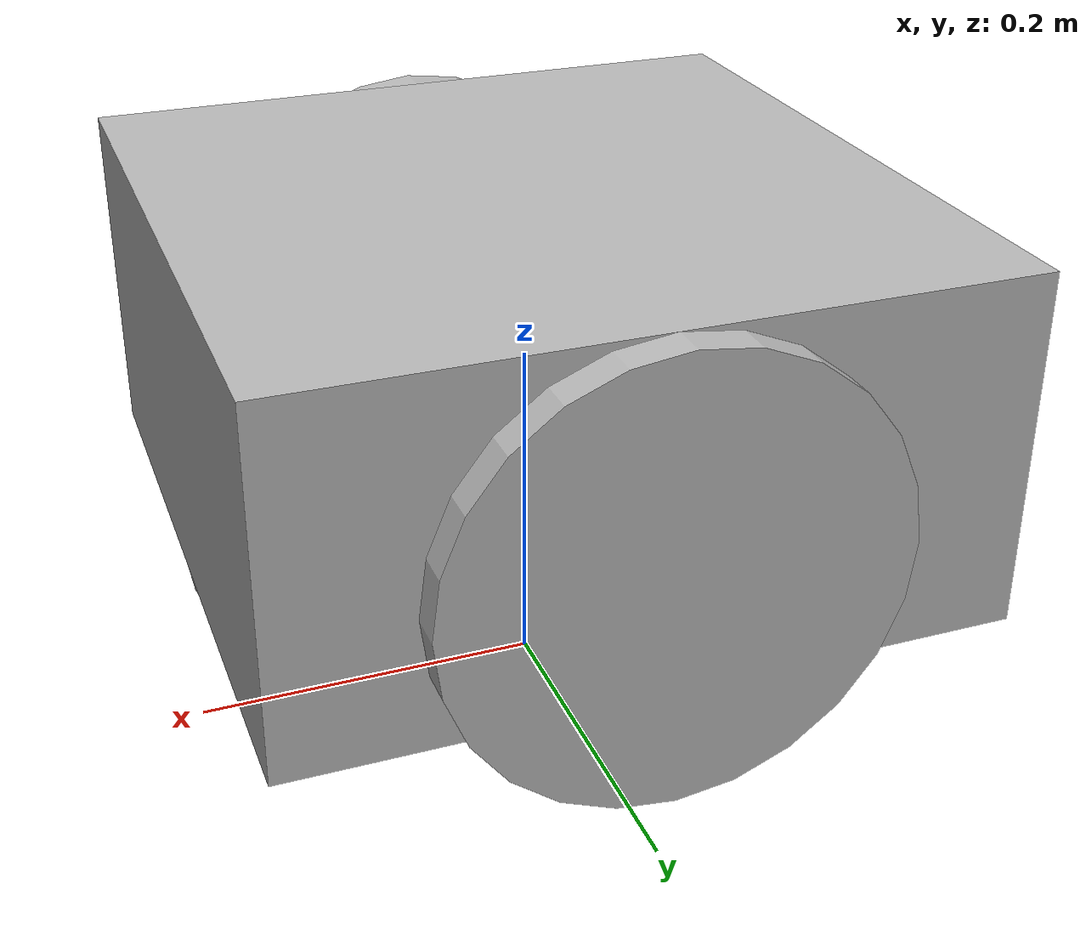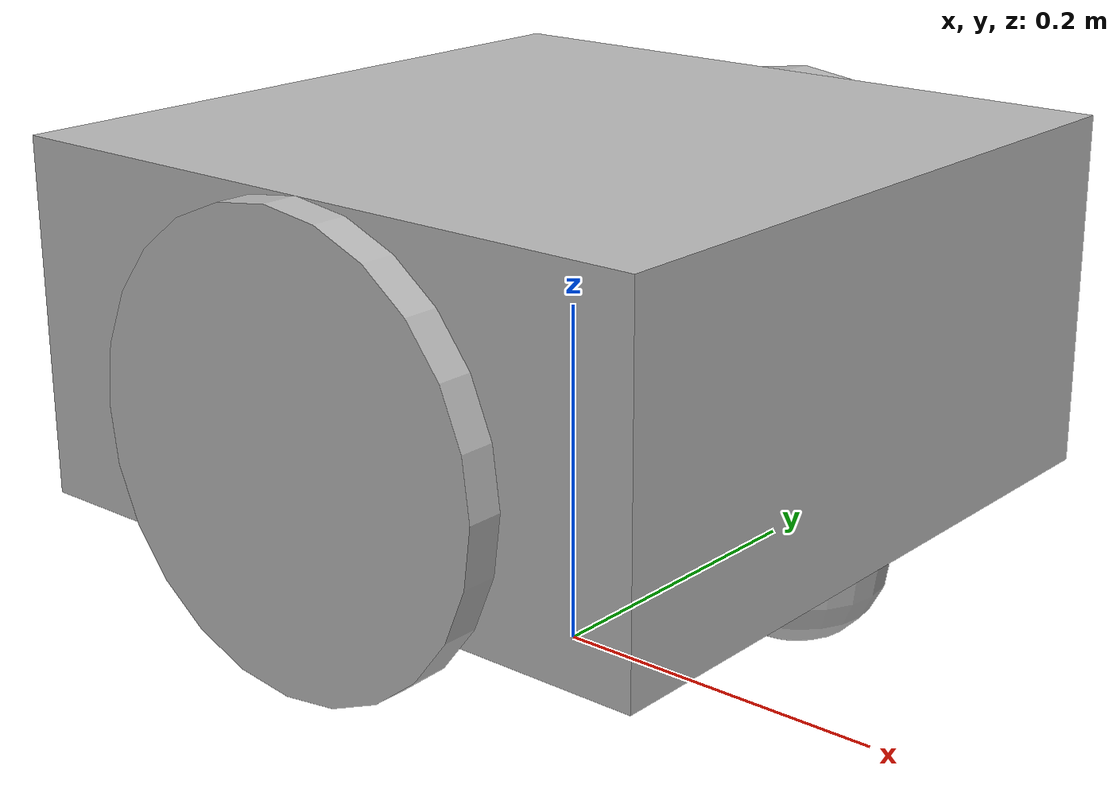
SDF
<?xml version='1.0'?>
<sdf version='1.4'>
  <!-- 車輪型ロボット1 -->
  <model name="wheel_robot1">
    <static>false</static> <!-- trueにすると静的モデル -->
    <link name='chassis'>　<!-- リンク：車体　-->
      <pose>0 0 0.2 0 0 0</pose> <!-- 位置(x,y,z)と姿勢(roll,pitch,yaw) -->
      <collision name='collision'> <!-- 衝突検出用 -->
        <geometry> <!-- 形状情報 -->
          <box> <!-- 直方体　-->
            <size>0.4 0.4 0.2</size> <!-- サイズx,y,z軸方向 -->
          </box>
        </geometry>
      </collision>

      <visual name='visual'> <!-- 表示用 -->
	<geometry>
          <box>
            <size>0.4 0.4 0.2</size>
          </box>
        </geometry>
      </visual>

      <collision name='caster1_collision'> <!-- キャスター -->
        <pose>0.15 0 -0.1 0 0 0</pose>
	<geometry>
          <sphere>　
            <radius>.05</radius> <!-- 半径 -->
          </sphere>
        </geometry>

        <surface> <!-- 表面情報 -->
        <friction> <!-- 摩擦 -->
            <ode> <!-- ODE用のパラメータ -->
              <mu>0</mu> <!-- 摩擦係数 -->
              <mu2>0</mu2>
              <slip1>1.0</slip1>
              <slip2>1.0</slip2>
            </ode>
          </friction>
        </surface>
      </collision>

      <visual name='caster1_visual'>
	<pose>0.15 0 -0.1 0 0 0</pose>
        <geometry>
	  <sphere>
            <radius>.05</radius>
          </sphere>
        </geometry>
      </visual>

      <collision name='caster2_collision'>
        <pose>-0.15 0 -0.1 0 0 0</pose>
        <geometry>
	  <sphere>
            <radius>.05</radius>
          </sphere>
        </geometry>
 <surface>
          <friction>
            <ode>
              <mu>0</mu>
              <mu2>0</mu2>
              <slip1>1.0</slip1>
              <slip2>1.0</slip2>
            </ode>
          </friction>
        </surface>
      </collision>

      <visual name='caster2_visual'>
        <pose>-0.15 0 -0.10 0 0 0</pose>
        <geometry>
          <sphere>
            <radius>.05</radius>
          </sphere>
        </geometry>
      </visual>
    </link>
  <link name="left_wheel"> <!-- 左車輪　-->
      <pose>0.0 0.21 0.175 0 1.5707 1.5707</pose>
      <collision name="collision">
        <geometry>
          <cylinder>
            <radius>0.125</radius> <!-- 半径 -->
            <length>0.02</length>  <!-- 長さ -->
          </cylinder>
        </geometry>
      </collision>
      <visual name="visual">
        <geometry>
          <cylinder>
            <radius>0.125</radius>
            <length>0.02</length>
          </cylinder>
        </geometry>
      </visual>
    </link>
  <link name="right_wheel">  <!-- 右車輪　-->
      <pose>0.0 -0.21 0.175 0 1.5707 1.5707</pose>
      <collision name="collision">
        <geometry>
          <cylinder>
            <radius>0.125</radius>
            <length>0.02</length>
          </cylinder>
        </geometry>
      </collision>
      <visual name="visual">
        <geometry>
          <cylinder>
            <radius>0.125</radius>
            <length>0.02</length>
          </cylinder>
        </geometry>
      </visual>
   </link>

    <!-- ジョイント(関節)　revoluteは回転式(ヒンジ）-->
    <joint type="revolute" name="left_wheel_hinge"> <!--左車軸 -->
      <pose>0 0 -0.02 0 0 0</pose>
      <child>left_wheel</child> <!-- 子(下位)リンク -->
      <parent>chassis</parent>  <!-- 親(上位)リンク -->
      <axis>
        <xyz>0 1 0</xyz> <!-- 回転軸ベクトル(x,y,z)　-->
      </axis>
    </joint>
 <joint type="revolute" name="right_wheel_hinge">
      <pose>0 0  0.02 0 0 0</pose>
      <child>right_wheel</child>
      <parent>chassis</parent>
      <axis>
        <xyz>0 1 0</xyz>
      </axis>
    </joint>

  </model>
</sdf>
